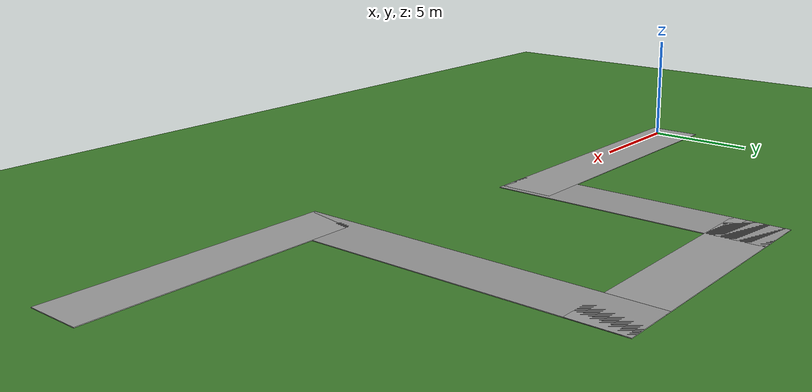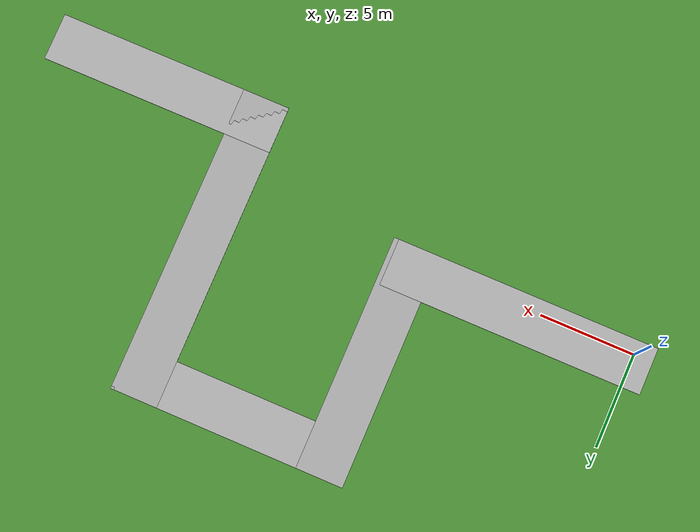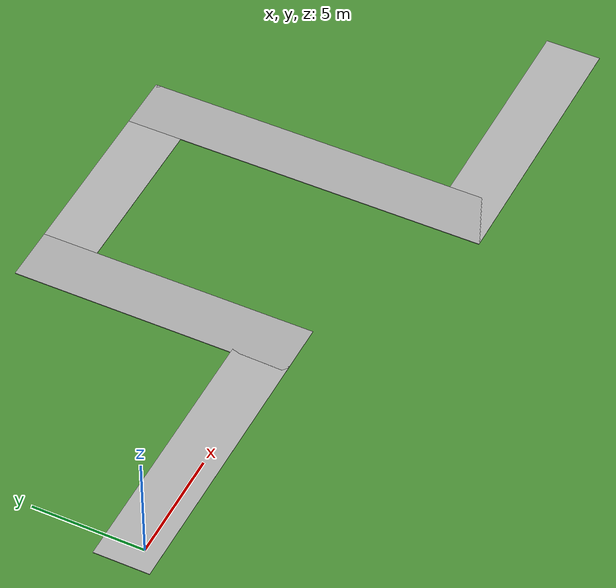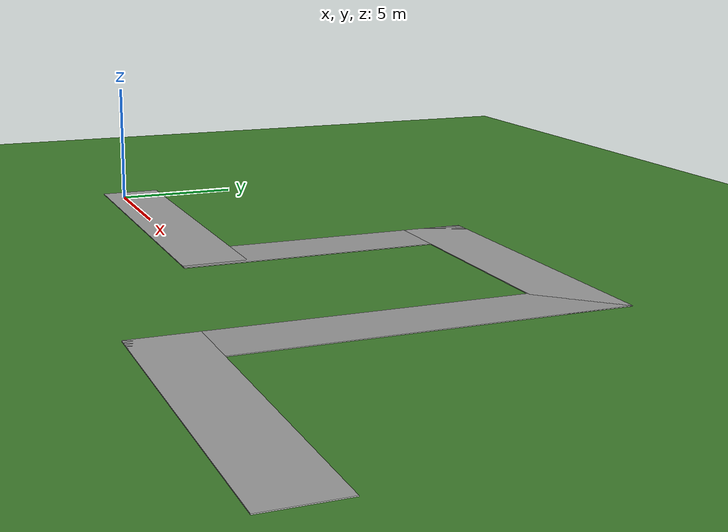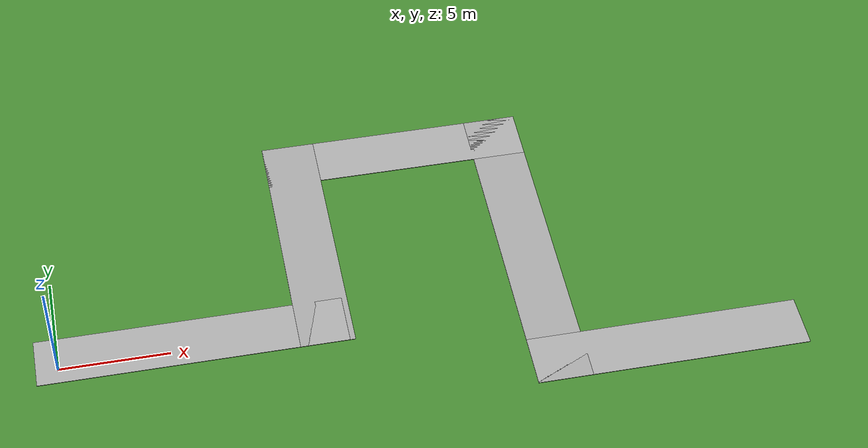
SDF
<sdf version="1.9">
 <world name="person_tracking_long_path">
  <physics type="ode">
   <max_step_size>0.004</max_step_size>
   <real_time_update_rate>250</real_time_update_rate>
   <real_time_factor>1.0</real_time_factor>
  </physics>
  <plugin filename="gz-sim-contact-system" name="gz::sim::systems::Contact"/>
  <plugin filename="gz-sim-physics-system" name="gz::sim::systems::Physics"/>
  <plugin filename="gz-sim-sensors-system" name="gz::sim::systems::Sensors">
   <render_engine>ogre2</render_engine>
  </plugin>
  <plugin filename="gz-sim-user-commands-system" name="gz::sim::systems::UserCommands"/>
  <plugin filename="gz-sim-scene-broadcaster-system" name="gz::sim::systems::SceneBroadcaster"/>
  <plugin filename="gz-sim-imu-system" name="gz::sim::systems::Imu"/>
  <plugin filename="gz-sim-air-pressure-system" name="gz::sim::systems::AirPressure"/>
  <plugin filename="gz-sim-navsat-system" name="gz::sim::systems::NavSat"/>
  <gravity>0 0 -9.8</gravity>
  <magnetic_field>6e-06 2.3e-05 -4.2e-05</magnetic_field>
  <atmosphere type="adiabatic"/>
  <scene>
   <ambient>0.8 0.8 0.8 1.0</ambient>
   <background>0.7 0.85 1.0 1.0</background>
   <sky><clouds><speed>12</speed></clouds></sky>
  </scene>
  <spherical_coordinates>
   <latitude_deg>47.397742</latitude_deg>
   <longitude_deg>8.545594</longitude_deg>
   <elevation>488.0</elevation>
   <heading_deg>0</heading_deg>
   <surface_model>EARTH_WGS84</surface_model>
  </spherical_coordinates>
  <light type="directional" name="sun">
   <pose>0 0 50 0 0 0</pose>
   <diffuse>0.9 0.9 0.9 1</diffuse>
   <specular>0.8 0.8 0.8 1</specular>
   <direction>-0.4 0.2 -0.9</direction>
  </light>
  <model name="ground_grass">
   <static>true</static>
   <link name="link">
    <collision name="collision">
     <geometry><plane><normal>0 0 1</normal><size>140 140</size></plane></geometry>
     <surface><friction><ode><mu>100</mu><mu2>50</mu2></ode></friction></surface>
    </collision>
    <visual name="visual">
     <geometry><plane><normal>0 0 1</normal><size>140 140</size></plane></geometry>
     <material>
      <ambient>0.22 0.48 0.16 1.0</ambient>
      <diffuse>0.28 0.55 0.20 1.0</diffuse>
      <specular>0.05 0.08 0.05 1.0</specular>
     </material>
    </visual>
   </link>
  </model>
  <model name="paved_walkway_system">
   <static>true</static>
   <link name="path_link">
    <visual name="seg1_vis">
     <pose>6.0 0.5 0.015 0 0 0</pose>
     <geometry><box><size>14.0 2.5 0.03</size></box></geometry>
     <material><ambient>0.62 0.62 0.62 1.0</ambient><diffuse>0.68 0.68 0.68 1.0</diffuse></material>
    </visual>
    <visual name="seg2_vis">
     <pose>12.0 5.5 0.015 0 0 0</pose>
     <geometry><box><size>2.5 12.5 0.03</size></box></geometry>
     <material><ambient>0.60 0.60 0.60 1.0</ambient><diffuse>0.66 0.66 0.66 1.0</diffuse></material>
    </visual>
    <visual name="seg3_vis">
     <pose>17.0 10.5 0.015 0 0 0</pose>
     <geometry><box><size>12.5 2.5 0.03</size></box></geometry>
     <material><ambient>0.62 0.62 0.62 1.0</ambient><diffuse>0.68 0.68 0.68 1.0</diffuse></material>
    </visual>
    <visual name="seg4_vis">
     <pose>22.0 3.5 0.015 0 0 0</pose>
     <geometry><box><size>2.5 16.5 0.03</size></box></geometry>
     <material><ambient>0.60 0.60 0.60 1.0</ambient><diffuse>0.66 0.66 0.66 1.0</diffuse></material>
    </visual>
    <visual name="seg5_vis">
     <pose>27.0 -3.5 0.015 0 0 0</pose>
     <geometry><box><size>12.5 2.5 0.03</size></box></geometry>
     <material><ambient>0.62 0.62 0.62 1.0</ambient><diffuse>0.68 0.68 0.68 1.0</diffuse></material>
    </visual>
   </link>
  </model>
 </world>
</sdf>
